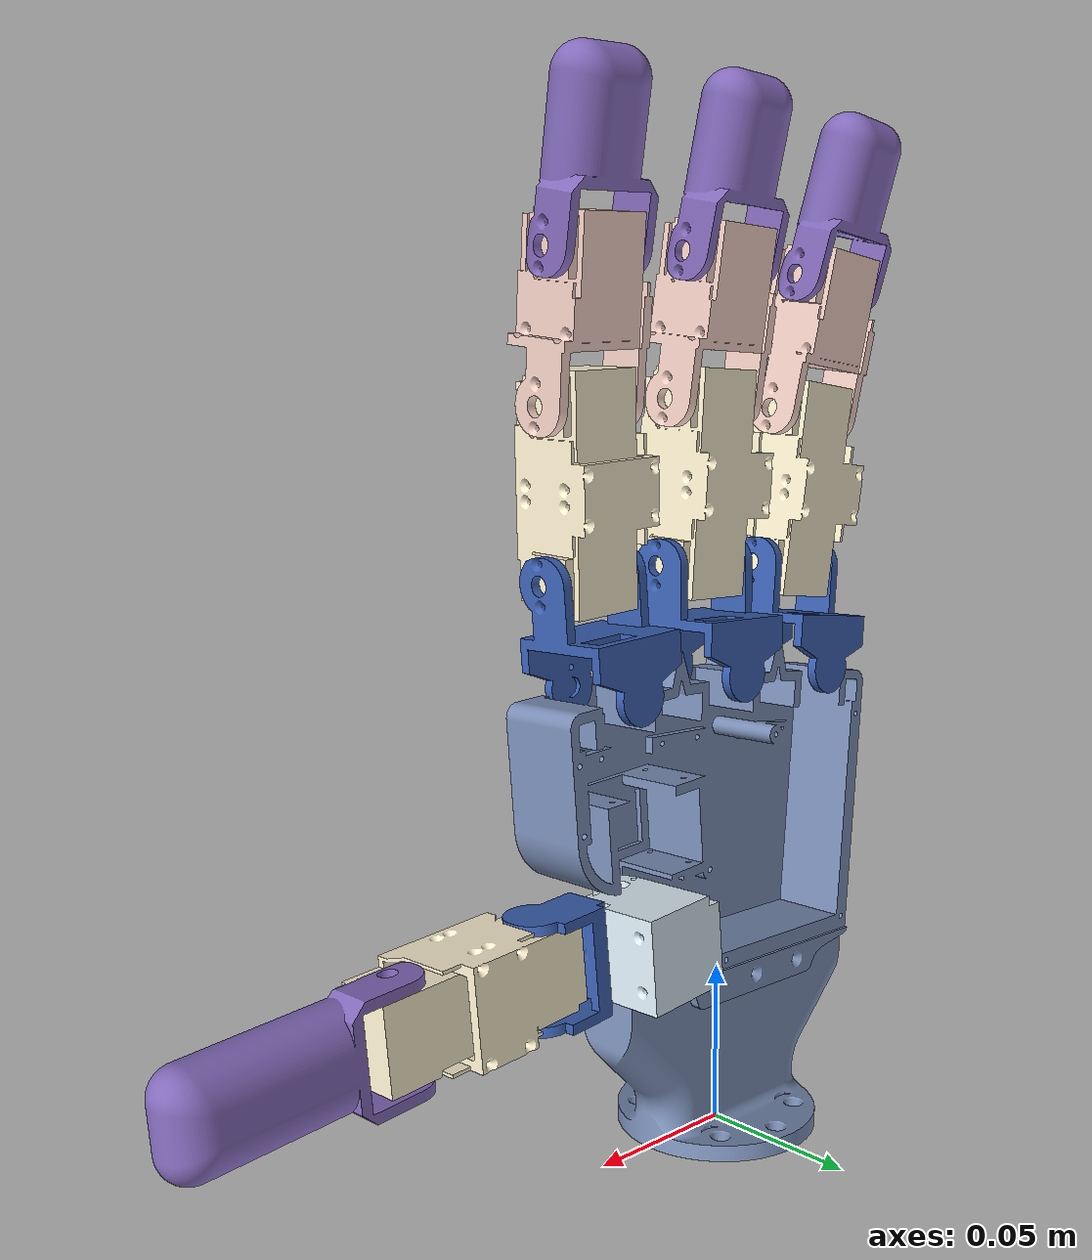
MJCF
<mujoco model="tilburg_hand">
<option timestep="0.01111" iterations="50" integrator="Euler" gravity="0 0 -9.81" />
  <default>
    <geom contype="0" conaffinity="0"/>
  </default>
  <compiler angle="radian"/>

  <asset>
    <mesh name="handbase_and_motors_collision" file="lars_righthand_base.stl" scale="0.001 0.001 0.001"/>
    <mesh name="wrist_collision" file="lars_wrist_straight.stl" scale="0.001 0.001 0.001"/>
    <mesh name="thumb_mcp_collision" file="thumb_mcp_collision.stl"/>
    <mesh name="test_thumb_roll_mcp_collision" file="test_thumb_roll_mcp_collision.stl"/>
    <mesh name="proximal_phalange_collision" file="proximal_phalange_collision.stl"/>
    <mesh name="thumb_distal_collision" file="thumb_distal_collision.stl"/>
    <mesh name="mcp_3_collision" file="mcp_3_collision.stl"/>
    <mesh name="proximal_phalange_2_collision" file="proximal_phalange_2_collision.stl"/>
    <mesh name="middle_phalange_collision" file="middle_phalange_collision.stl"/>
    <mesh name="distal_finalshape_collision" file="distal_finalshape_collision.stl"/>
    <mesh name="mcp_3_2_collision" file="mcp_3_2_collision.stl"/>
    <mesh name="proximal_phalange_3_collision" file="proximal_phalange_3_collision.stl"/>
    <mesh name="middle_phalange_2_collision" file="middle_phalange_2_collision.stl"/>
    <mesh name="distal_finalshape_2_collision" file="distal_finalshape_2_collision.stl"/>
    <mesh name="mcp_3_3_collision" file="mcp_3_3_collision.stl"/>
    <mesh name="proximal_phalange_4_collision" file="proximal_phalange_4_collision.stl"/>
    <mesh name="middle_phalange_3_collision" file="middle_phalange_3_collision.stl"/>
    <mesh name="distal_finalshape_3_collision" file="distal_finalshape_3_collision.stl"/>
  </asset>

<worldbody>
<body name="wrist_straight" pos="0 0 0">
<geom name="wrist" friction="1 0.005 0.001" margin="0.001" solimp="0.95 0.95 0.01" solref="0.008 1" type="mesh" rgba="0.480254 0.55963 0.718543 1" mesh="wrist_collision" pos="-0 0 0"/>
<body name="hand_base" pos="-0.00044 0.055 0.0242" quat="0.70710678 0.70710678 0 0">
   <geom name="handbase_and_motors" friction="1 0.005 0.001" margin="0.001" solimp="0.95 0.95 0.01" solref="0.008 1" type="mesh" rgba="0.480254 0.55963 0.718543 1" mesh="handbase_and_motors_collision" pos="-0.264 0.021 0.042"/>
    <body name="thumb_mcp" pos="0.0462379 0.0619979 0.0529852" quat="0.0426663 -0.0206258 -0.706944 0.70568">
      <inertial pos="-0.00336008 0.0104245 0.0140112" quat="0.705399 0.708685 -0.00389937 -0.0127609" mass="0.0259261" diaginertia="4.44074e-06 4.37503e-06 2.95984e-06"/>
      <joint damping="0.1" stiffness="0.5" armature="0.01" frictionloss="0.01" ref="0" springref="0" margin="0.01" name="thumb_cmc" pos="0 0 0" axis="0 0 1" range="0 1.5708" actuatorfrcrange="-0.35 0.35"/>
      <geom name="thumb_thumb_mcp" friction="1 0.005 0.001" margin="0.001" solimp="0.95 0.95 0.01" solref="0.008 1" type="mesh" rgba="0.871558 0.93709 0.976409 1" mesh="thumb_mcp_collision"/>
      <body name="test_thumb_roll_mcp" pos="-0.01699 0 0.014" quat="0.707087 -0.0052599 -0.707087 0.0052599">
        <inertial pos="-0.000503967 0.00367437 0.00891183" quat="0.441307 0.548539 0.474465 0.528428" mass="0.0051287" diaginertia="1.09205e-06 9.52622e-07 4.71781e-07"/>
        <joint damping="0.1" stiffness="0.5" armature="0.01" frictionloss="0.01" ref="0" springref="0" margin="0.01" name="thumb_mcp_rot" pos="0 0 0" axis="0 0 1" range="-1.74533 0" actuatorfrcrange="-0.35 0.35"/>
        <geom name="thumb_test_thumb_roll_mcp" friction="1 0.005 0.001" margin="0.001" solimp="0.95 0.95 0.01" solref="0.008 1" type="mesh" rgba="0.231373 0.380392 0.705882 1" mesh="test_thumb_roll_mcp_collision"/>
        <body name="proximal_phalange" pos="0.0131 -1.07477e-06 0.0185" quat="0.502265 -0.497725 0.502265 -0.497725">
          <inertial pos="0.000290464 -0.0248 -0.0139996" quat="0.70708 0.70708 0.0061953 -0.0061953" mass="0.0442258" diaginertia="1.83091e-05 1.7756e-05 4.94746e-06"/>
          <joint damping="0.1" stiffness="0.5" armature="0.01" frictionloss="0.01" ref="0" springref="0" margin="0.01" name="thumb_mcp" pos="0 0 0" axis="0 0 1" range="0 1.5708" actuatorfrcrange="-0.35 0.35"/>
          <geom name="thumb_proximal_phalange" friction="1 0.005 0.001" margin="0.001" solimp="0.95 0.95 0.01" solref="0.008 1" type="mesh" rgba="0.995698 0.95113 0.825267 1" mesh="proximal_phalange_collision"/>
          <body name="thumb_distal" pos="0 -0.0496 0" quat="0.707104 0 0 -0.70711">
            <inertial pos="0.0363127 4.71179e-05 -0.0132934" quat="0.490269 0.488734 0.507649 0.512902" mass="0.01279" diaginertia="5.84542e-06 5.17804e-06 1.76804e-06"/>
            <joint damping="0.1" stiffness="0.5" armature="0.01" frictionloss="0.01" ref="0" springref="0" margin="0.01" name="thumb_ip" pos="0 0 0" axis="0 0 1" range="0 1.6581" actuatorfrcrange="-0.35 0.35"/>
            <geom name="thumb_thumb_distal" friction="1 0.005 0.001" margin="0.001" solimp="0.95 0.95 0.01" solref="0.008 1" type="mesh" rgba="0.513726 0.415686 0.733333 1" mesh="thumb_distal_collision"/>
          </body>
        </body>
      </body>
    </body>
    <body name="mcp_3" pos="0.0540379 0.120346 0.0649955" quat="0.999 0.000219053 0.000521299 -0.0446977">
      <inertial pos="-0.00048757 0.0155243 -0.0117405" quat="0.719022 -0.283303 0.16479 0.612855" mass="0.00917755" diaginertia="2.25958e-06 2.05723e-06 1.86647e-06"/>
      <joint damping="0.1" stiffness="0.5" armature="0.01" frictionloss="0.01" ref="0" springref="0" margin="0.01" name="index_mcp_abadd" pos="0 0 0" axis="0 0 1" range="-0.436332 0.436332" actuatorfrcrange="-0.35 0.35"/>
      <geom name="index_mcp_3" friction="1 0.005 0.001" margin="0.001" solimp="0.95 0.95 0.01" solref="0.008 1" type="mesh" rgba="0.231373 0.380392 0.705882 1" mesh="mcp_3_collision"/>
      <body name="proximal_phalange_2" pos="0.0131 0.0325 -0.00659893" quat="0.0256174 0.706643 0.0256174 0.706643">
        <inertial pos="0.000290464 -0.0248 -0.0139996" quat="0.70708 0.70708 0.0061953 -0.0061953" mass="0.0442258" diaginertia="1.83091e-05 1.7756e-05 4.94746e-06"/>
        <joint damping="0.1" stiffness="0.5" armature="0.01" frictionloss="0.01" ref="0" springref="0" margin="0.01" name="index_mcp" pos="0 0 0" axis="0 0 1" range="-0.0873 1.6581" actuatorfrcrange="-0.35 0.35"/>
        <geom name="index_proximal_phalange_2" friction="1 0.005 0.001" margin="0.001" solimp="0.95 0.95 0.01" solref="0.008 1" type="mesh" rgba="0.995698 0.95113 0.825267 1" mesh="proximal_phalange_2_collision"/>
        <body name="middle_phalange" pos="0 -0.0496 0" quat="0.67569 0 0 -0.737186">
          <inertial pos="0.0299115 0.00075866 -0.0138424" quat="0.488832 0.485623 0.505181 0.519621" mass="0.0256181" diaginertia="6.4616e-06 5.47097e-06 3.01437e-06"/>
          <joint damping="0.1" stiffness="0.5" armature="0.01" frictionloss="0.01" ref="0" springref="0" margin="0.01" name="index_pip" pos="0 0 0" axis="0 0 1" range="-0.0873 1.6581" actuatorfrcrange="-0.35 0.35"/>
          <geom name="index_middle_phalange" friction="1 0.005 0.001" margin="0.001" solimp="0.95 0.95 0.01" solref="0.008 1" type="mesh" rgba="0.959064 0.819626 0.777411 1" mesh="middle_phalange_collision"/>
          <body name="distal_finalshape" pos="0.0423 0 -1e-05" quat="0.99905 0.000871836 3.80276e-05 -0.0435764">
            <inertial pos="0.028182 -0.000109832 -0.0133084" quat="0.484783 0.47974 0.511816 0.52238" mass="0.00905" diaginertia="2.94805e-06 2.40857e-06 1.27278e-06"/>
            <joint damping="0.1" stiffness="0.5" armature="0.01" frictionloss="0.01" ref="0" springref="0" margin="0.01" name="index_dip" pos="0 0 0" axis="0 0 1" range="-0.0873 1.6581" actuatorfrcrange="-0.35 0.35"/>
            <geom name="index_distal_finalshape" friction="1 0.005 0.001" margin="0.001" solimp="0.95 0.95 0.01" solref="0.008 1" type="mesh" rgba="0.513726 0.415686 0.733333 1" mesh="distal_finalshape_collision"/>
          </body>
        </body>scale="0.001 0.001 0.001"
      </body>
    </body>
    <body name="mcp_3_2" pos="0.009956 0.122372 0.0650415" quat="0.999999 0.00024155 0.000511263 -0.00114438">
      <inertial pos="-0.00048757 0.0155243 -0.0117405" quat="0.719022 -0.283303 0.16479 0.612855" mass="0.00917755" diaginertia="2.25958e-06 2.05723e-06 1.86647e-06"/>
      <joint damping="0.1" stiffness="0.5" armature="0.01" frictionloss="0.01" ref="0" springref="0" margin="0.01" name="middle_mcp_abadd" pos="0 0 0" axis="0 0 1" range="-0.436332 0.436332" actuatorfrcrange="-0.35 0.35"/>
      <geom name="middle_mcp_3_2" friction="1 0.005 0.001" margin="0.001" solimp="0.95 0.95 0.01" solref="0.008 1" type="mesh" rgba="0.231373 0.380392 0.705882 1" mesh="mcp_3_2_collision"/>
      <body name="proximal_phalange_3" pos="0.0131 0.0325 -0.00659893" quat="0.0247065 0.706675 0.0247065 0.706675">
        <inertial pos="0.000290464 -0.0248 -0.0139996" quat="0.70708 0.70708 0.0061953 -0.0061953" mass="0.0442258" diaginertia="1.83091e-05 1.7756e-05 4.94746e-06"/>
        <joint damping="0.1" stiffness="0.5" armature="0.01" frictionloss="0.01" ref="0" springref="0" margin="0.01" name="middle_mcp" pos="0 0 0" axis="0 0 1" range="-0.0873 1.6581" actuatorfrcrange="-0.35 0.35"/>
        <geom name="middle_proximal_phalange_3" friction="1 0.005 0.001" margin="0.001" solimp="0.95 0.95 0.01" solref="0.008 1" type="mesh" rgba="0.995698 0.95113 0.825267 1" mesh="proximal_phalange_3_collision"/>
        <body name="middle_phalange_2" pos="0 -0.0496 0" quat="0.675687 0 0 -0.737189">
          <inertial pos="0.0299115 0.00075866 -0.0138424" quat="0.488832 0.485623 0.505181 0.519621" mass="0.0256181" diaginertia="6.4616e-06 5.47097e-06 3.01437e-06"/>
          <joint damping="0.1" stiffness="0.5" armature="0.01" frictionloss="0.01" ref="0" springref="0" margin="0.01" name="middle_pip" pos="0 0 0" axis="0 0 1" range="-0.0873 1.6581" actuatorfrcrange="-0.35 0.35"/>
          <geom name="middle_middle_phalange_2" friction="1 0.005 0.001" margin="0.001" solimp="0.95 0.95 0.01" solref="0.008 1" type="mesh" rgba="0.959064 0.819626 0.777411 1" mesh="middle_phalange_2_collision"/>
          <body name="distal_finalshape_2" pos="0.0423 0 -1e-05" quat="0.99905 0.000871836 3.80276e-05 -0.0435764">
            <inertial pos="0.028182 -0.000109832 -0.0133084" quat="0.484783 0.47974 0.511816 0.52238" mass="0.00905" diaginertia="2.94805e-06 2.40857e-06 1.27278e-06"/>
            <joint damping="0.1" stiffness="0.5" armature="0.01" frictionloss="0.01" ref="0" springref="0" margin="0.01" name="middle_dip" pos="0 0 0" axis="0 0 1" range="-0.0873 1.6581" actuatorfrcrange="-0.35 0.35"/>
            <geom name="middle_distal_finalshape_2" friction="1 0.005 0.001" margin="0.001" solimp="0.95 0.95 0.01" solref="0.008 1" type="mesh" rgba="0.513726 0.415686 0.733333 1" mesh="distal_finalshape_2_collision"/>
          </body>
        </body>
      </body>
    </body>
    <body name="mcp_3_3" pos="-0.0346372 0.120001 0.0680959" quat="0.9991 0.000263588 0.000500258 0.0424111">
      <inertial pos="-0.00048757 0.0155243 -0.0117405" quat="0.719022 -0.283303 0.16479 0.612855" mass="0.00917755" diaginertia="2.25958e-06 2.05723e-06 1.86647e-06"/>
      <joint damping="0.1" stiffness="0.5" armature="0.01" frictionloss="0.01" ref="0" springref="0" margin="0.01" name="ring_mcp_abadd" pos="0 0 0" axis="0 0 1" range="-0.436332 0.436332" actuatorfrcrange="-0.35 0.35"/>
      <geom name="ring_mcp_3_3" friction="1 0.005 0.001" margin="0.001" solimp="0.95 0.95 0.01" solref="0.008 1" type="mesh" rgba="0.231373 0.380392 0.705882 1" mesh="mcp_3_3_collision"/>
      <body name="proximal_phalange_4" pos="0.0131 0.0325 -0.00659893" quat="0.0238426 0.706705 0.0238426 0.706705">
        <inertial pos="0.000290464 -0.0248 -0.0139996" quat="0.70708 0.70708 0.0061953 -0.0061953" mass="0.0442258" diaginertia="1.83091e-05 1.7756e-05 4.94746e-06"/>
        <joint damping="0.1" stiffness="0.5" armature="0.01" frictionloss="0.01" ref="0" springref="0" margin="0.01" name="ring_mcp" pos="0 0 0" axis="0 0 1" range="-0.0873 1.6581" actuatorfrcrange="-0.35 0.35"/>
        <geom name="ring_proximal_phalange_4" friction="1 0.005 0.001" margin="0.001" solimp="0.95 0.95 0.01" solref="0.008 1" type="mesh" rgba="0.995698 0.95113 0.825267 1" mesh="proximal_phalange_4_collision"/>
        <body name="middle_phalange_3" pos="0 -0.0496 0" quat="0.675684 0 0 -0.737191">
          <inertial pos="0.0299115 0.00075866 -0.0138424" quat="0.488832 0.485623 0.505181 0.519621" mass="0.0256181" diaginertia="6.4616e-06 5.47097e-06 3.01437e-06"/>
          <joint damping="0.1" stiffness="0.5" armature="0.01" frictionloss="0.01" ref="0" springref="0" margin="0.01" name="ring_pip" pos="0 0 0" axis="0 0 1" range="-0.0873 1.6581" actuatorfrcrange="-0.35 0.35"/>
          <geom name="ring_middle_phalange_3" friction="1 0.005 0.001" margin="0.001" solimp="0.95 0.95 0.01" solref="0.008 1" type="mesh" rgba="0.959064 0.819626 0.777411 1" mesh="middle_phalange_3_collision"/>
          <body name="distal_finalshape_3" pos="0.0423 0 -1e-05" quat="0.99905 0.000871836 3.80272e-05 -0.0435759">
            <inertial pos="0.028182 -0.000109832 -0.0133084" quat="0.484783 0.47974 0.511816 0.52238" mass="0.00905" diaginertia="2.94805e-06 2.40857e-06 1.27278e-06"/>
            <joint damping="0.1" stiffness="0.5" armature="0.01" frictionloss="0.01" ref="0" springref="0" margin="0.01" name="ring_dip" pos="0 0 0" axis="0 0 1" range="-0.0873 1.6581" actuatorfrcrange="-0.35 0.35"/>
            <geom name="ring_distal_finalshape_3" friction="1 0.005 0.001" margin="0.001" solimp="0.95 0.95 0.01" solref="0.008 1" type="mesh" rgba="0.513726 0.415686 0.733333 1" mesh="distal_finalshape_3_collision"/>
          </body>scale="0.001 0.001 0.001"
        </body>
      </body>
    </body>
</body>
</body>
</worldbody>
<actuator>
<position ctrllimited="true" forcelimited="true" forcerange="-3 3" kp="100" gear="1" ctrlrange="0 1.5708" joint="thumb_cmc" name="thumb_cmc"></position>
<position ctrllimited="true" forcelimited="true" forcerange="-3 3" kp="100" gear="1" ctrlrange="-1.74533 0" joint="thumb_mcp_rot" name="thumb_mcp_rot"></position>
<position ctrllimited="true" forcelimited="true" forcerange="-3 3" kp="100" gear="1" ctrlrange="0 1.5708" joint="thumb_mcp" name="thumb_mcp"></position>
<position ctrllimited="true" forcelimited="true" forcerange="-3 3" kp="100" gear="1" ctrlrange="0 1.6581" joint="thumb_ip" name="thumb_ip"></position>
<position ctrllimited="true" forcelimited="true" forcerange="-3 3" kp="100" gear="1" ctrlrange="-0.436332 0.436332" joint="index_mcp_abadd" name="index_mcp_abadd"></position>
<position ctrllimited="true" forcelimited="true" forcerange="-3 3" kp="100" gear="1" ctrlrange="-0.0873 1.6581" joint="index_mcp" name="index_mcp"></position>
<position ctrllimited="true" forcelimited="true" forcerange="-3 3" kp="100" gear="1" ctrlrange="-0.0873 1.6581" joint="index_pip" name="index_pip"></position>
<position ctrllimited="true" forcelimited="true" forcerange="-3 3" kp="100" gear="1" ctrlrange="-0.0873 1.6581" joint="index_dip" name="index_dip"></position>
<position ctrllimited="true" forcelimited="true" forcerange="-3 3" kp="100" gear="1" ctrlrange="-0.436332 0.436332" joint="middle_mcp_abadd" name="middle_mcp_abadd"></position>
<position ctrllimited="true" forcelimited="true" forcerange="-3 3" kp="100" gear="1" ctrlrange="-0.0873 1.6581" joint="middle_mcp" name="middle_mcp"></position>
<position ctrllimited="true" forcelimited="true" forcerange="-3 3" kp="100" gear="1" ctrlrange="-0.0873 1.6581" joint="middle_pip" name="middle_pip"></position>
<position ctrllimited="true" forcelimited="true" forcerange="-3 3" kp="100" gear="1" ctrlrange="-0.0873 1.6581" joint="middle_dip" name="middle_dip"></position>
<position ctrllimited="true" forcelimited="true" forcerange="-3 3" kp="100" gear="1" ctrlrange="-0.436332 0.436332" joint="ring_mcp_abadd" name="ring_mcp_abadd"></position>
<position ctrllimited="true" forcelimited="true" forcerange="-3 3" kp="100" gear="1" ctrlrange="-0.0873 1.6581" joint="ring_mcp" name="ring_mcp"></position>
<position ctrllimited="true" forcelimited="true" forcerange="-3 3" kp="100" gear="1" ctrlrange="-0.0873 1.6581" joint="ring_pip" name="ring_pip"></position>
<position ctrllimited="true" forcelimited="true" forcerange="-3 3" kp="100" gear="1" ctrlrange="-0.0873 1.6581" joint="ring_dip" name="ring_dip"></position>
</actuator>
<contact><pair geom1="thumb_proximal_phalange" geom2="index_mcp_3" condim="3" friction="1 0.005 0.001" margin="0.0005" solimp="0.95 0.95 0.01" solref="0.008 1" />
        <pair geom1="thumb_proximal_phalange" geom2="index_proximal_phalange_2" condim="3" friction="1 0.005 0.001" margin="0.0005" solimp="0.95 0.95 0.01" solref="0.008 1" />
        <pair geom1="thumb_proximal_phalange" geom2="index_middle_phalange" condim="3" friction="1 0.005 0.001" margin="0.0005" solimp="0.95 0.95 0.01" solref="0.008 1" />
        <pair geom1="thumb_proximal_phalange" geom2="index_distal_finalshape" condim="3" friction="1 0.005 0.001" margin="0.0005" solimp="0.95 0.95 0.01" solref="0.008 1" />
        <pair geom1="thumb_proximal_phalange" geom2="middle_mcp_3_2" condim="3" friction="1 0.005 0.001" margin="0.0005" solimp="0.95 0.95 0.01" solref="0.008 1" />
        <pair geom1="thumb_proximal_phalange" geom2="middle_proximal_phalange_3" condim="3" friction="1 0.005 0.001" margin="0.0005" solimp="0.95 0.95 0.01" solref="0.008 1" />
        <pair geom1="thumb_proximal_phalange" geom2="middle_middle_phalange_2" condim="3" friction="1 0.005 0.001" margin="0.0005" solimp="0.95 0.95 0.01" solref="0.008 1" />
        <pair geom1="thumb_proximal_phalange" geom2="middle_distal_finalshape_2" condim="3" friction="1 0.005 0.001" margin="0.0005" solimp="0.95 0.95 0.01" solref="0.008 1" />
        <pair geom1="thumb_proximal_phalange" geom2="ring_mcp_3_3" condim="3" friction="1 0.005 0.001" margin="0.0005" solimp="0.95 0.95 0.01" solref="0.008 1" />
        <pair geom1="thumb_proximal_phalange" geom2="ring_proximal_phalange_4" condim="3" friction="1 0.005 0.001" margin="0.0005" solimp="0.95 0.95 0.01" solref="0.008 1" />
        <pair geom1="thumb_proximal_phalange" geom2="ring_middle_phalange_3" condim="3" friction="1 0.005 0.001" margin="0.0005" solimp="0.95 0.95 0.01" solref="0.008 1" />
        <pair geom1="thumb_proximal_phalange" geom2="ring_distal_finalshape_3" condim="3" friction="1 0.005 0.001" margin="0.0005" solimp="0.95 0.95 0.01" solref="0.008 1" />
        <pair geom1="handbase_and_motors" geom2="thumb_thumb_distal" condim="3" friction="1 0.005 0.001" margin="0.0005" solimp="0.95 0.95 0.01" solref="0.008 1" />
        <pair geom1="thumb_thumb_distal" geom2="index_mcp_3" condim="3" friction="1 0.005 0.001" margin="0.0005" solimp="0.95 0.95 0.01" solref="0.008 1" />
        <pair geom1="thumb_thumb_distal" geom2="index_proximal_phalange_2" condim="3" friction="1 0.005 0.001" margin="0.0005" solimp="0.95 0.95 0.01" solref="0.008 1" />
        <pair geom1="thumb_thumb_distal" geom2="index_middle_phalange" condim="3" friction="1 0.005 0.001" margin="0.0005" solimp="0.95 0.95 0.01" solref="0.008 1" />
        <pair geom1="thumb_thumb_distal" geom2="index_distal_finalshape" condim="3" friction="1 0.005 0.001" margin="0.0005" solimp="0.95 0.95 0.01" solref="0.008 1" />
        <pair geom1="thumb_thumb_distal" geom2="middle_mcp_3_2" condim="3" friction="1 0.005 0.001" margin="0.0005" solimp="0.95 0.95 0.01" solref="0.008 1" />
        <pair geom1="thumb_thumb_distal" geom2="middle_proximal_phalange_3" condim="3" friction="1 0.005 0.001" margin="0.0005" solimp="0.95 0.95 0.01" solref="0.008 1" />
        <pair geom1="thumb_thumb_distal" geom2="middle_middle_phalange_2" condim="3" friction="1 0.005 0.001" margin="0.0005" solimp="0.95 0.95 0.01" solref="0.008 1" />
        <pair geom1="thumb_thumb_distal" geom2="middle_distal_finalshape_2" condim="3" friction="1 0.005 0.001" margin="0.0005" solimp="0.95 0.95 0.01" solref="0.008 1" />
        <pair geom1="thumb_thumb_distal" geom2="ring_mcp_3_3" condim="3" friction="1 0.005 0.001" margin="0.0005" solimp="0.95 0.95 0.01" solref="0.008 1" />
        <pair geom1="thumb_thumb_distal" geom2="ring_proximal_phalange_4" condim="3" friction="1 0.005 0.001" margin="0.0005" solimp="0.95 0.95 0.01" solref="0.008 1" />
        <pair geom1="thumb_thumb_distal" geom2="ring_middle_phalange_3" condim="3" friction="1 0.005 0.001" margin="0.0005" solimp="0.95 0.95 0.01" solref="0.008 1" />
        <pair geom1="thumb_thumb_distal" geom2="ring_distal_finalshape_3" condim="3" friction="1 0.005 0.001" margin="0.0005" solimp="0.95 0.95 0.01" solref="0.008 1" />
        <pair geom1="index_mcp_3" geom2="index_distal_finalshape" condim="3" friction="1 0.005 0.001" margin="0.0005" solimp="0.95 0.95 0.01" solref="0.008 1" />
        <pair geom1="index_proximal_phalange_2" geom2="index_distal_finalshape" condim="3" friction="1 0.005 0.001" margin="0.0005" solimp="0.95 0.95 0.01" solref="0.008 1" />
        <pair geom1="index_mcp_3" geom2="middle_mcp_3_2" condim="3" friction="1 0.005 0.001" margin="0.0005" solimp="0.95 0.95 0.01" solref="0.008 1" />
        <pair geom1="index_mcp_3" geom2="middle_proximal_phalange_3" condim="3" friction="1 0.005 0.001" margin="0.0005" solimp="0.95 0.95 0.01" solref="0.008 1" />
        <pair geom1="index_mcp_3" geom2="middle_middle_phalange_2" condim="3" friction="1 0.005 0.001" margin="0.0005" solimp="0.95 0.95 0.01" solref="0.008 1" />
        <pair geom1="index_mcp_3" geom2="middle_distal_finalshape_2" condim="3" friction="1 0.005 0.001" margin="0.0005" solimp="0.95 0.95 0.01" solref="0.008 1" />
        <pair geom1="index_mcp_3" geom2="ring_mcp_3_3" condim="3" friction="1 0.005 0.001" margin="0.0005" solimp="0.95 0.95 0.01" solref="0.008 1" />
        <pair geom1="index_mcp_3" geom2="ring_proximal_phalange_4" condim="3" friction="1 0.005 0.001" margin="0.0005" solimp="0.95 0.95 0.01" solref="0.008 1" />
        <pair geom1="index_mcp_3" geom2="ring_middle_phalange_3" condim="3" friction="1 0.005 0.001" margin="0.0005" solimp="0.95 0.95 0.01" solref="0.008 1" />
        <pair geom1="index_mcp_3" geom2="ring_distal_finalshape_3" condim="3" friction="1 0.005 0.001" margin="0.0005" solimp="0.95 0.95 0.01" solref="0.008 1" />
        <pair geom1="index_proximal_phalange_2" geom2="middle_mcp_3_2" condim="3" friction="1 0.005 0.001" margin="0.0005" solimp="0.95 0.95 0.01" solref="0.008 1" />
        <pair geom1="index_proximal_phalange_2" geom2="middle_proximal_phalange_3" condim="3" friction="1 0.005 0.001" margin="0.0005" solimp="0.95 0.95 0.01" solref="0.008 1" />
        <pair geom1="index_proximal_phalange_2" geom2="middle_middle_phalange_2" condim="3" friction="1 0.005 0.001" margin="0.0005" solimp="0.95 0.95 0.01" solref="0.008 1" />
        <pair geom1="index_proximal_phalange_2" geom2="middle_distal_finalshape_2" condim="3" friction="1 0.005 0.001" margin="0.0005" solimp="0.95 0.95 0.01" solref="0.008 1" />
        <pair geom1="index_proximal_phalange_2" geom2="ring_mcp_3_3" condim="3" friction="1 0.005 0.001" margin="0.0005" solimp="0.95 0.95 0.01" solref="0.008 1" />
        <pair geom1="index_proximal_phalange_2" geom2="ring_proximal_phalange_4" condim="3" friction="1 0.005 0.001" margin="0.0005" solimp="0.95 0.95 0.01" solref="0.008 1" />
        <pair geom1="index_proximal_phalange_2" geom2="ring_middle_phalange_3" condim="3" friction="1 0.005 0.001" margin="0.0005" solimp="0.95 0.95 0.01" solref="0.008 1" />
        <pair geom1="index_proximal_phalange_2" geom2="ring_distal_finalshape_3" condim="3" friction="1 0.005 0.001" margin="0.0005" solimp="0.95 0.95 0.01" solref="0.008 1" />
        <pair geom1="index_middle_phalange" geom2="middle_mcp_3_2" condim="3" friction="1 0.005 0.001" margin="0.0005" solimp="0.95 0.95 0.01" solref="0.008 1" />
        <pair geom1="index_middle_phalange" geom2="middle_proximal_phalange_3" condim="3" friction="1 0.005 0.001" margin="0.0005" solimp="0.95 0.95 0.01" solref="0.008 1" />
        <pair geom1="index_middle_phalange" geom2="middle_middle_phalange_2" condim="3" friction="1 0.005 0.001" margin="0.0005" solimp="0.95 0.95 0.01" solref="0.008 1" />
        <pair geom1="index_middle_phalange" geom2="middle_distal_finalshape_2" condim="3" friction="1 0.005 0.001" margin="0.0005" solimp="0.95 0.95 0.01" solref="0.008 1" />
        <pair geom1="index_middle_phalange" geom2="ring_mcp_3_3" condim="3" friction="1 0.005 0.001" margin="0.0005" solimp="0.95 0.95 0.01" solref="0.008 1" />
        <pair geom1="index_middle_phalange" geom2="ring_proximal_phalange_4" condim="3" friction="1 0.005 0.001" margin="0.0005" solimp="0.95 0.95 0.01" solref="0.008 1" />
        <pair geom1="index_middle_phalange" geom2="ring_middle_phalange_3" condim="3" friction="1 0.005 0.001" margin="0.0005" solimp="0.95 0.95 0.01" solref="0.008 1" />
        <pair geom1="index_middle_phalange" geom2="ring_distal_finalshape_3" condim="3" friction="1 0.005 0.001" margin="0.0005" solimp="0.95 0.95 0.01" solref="0.008 1" />
        <pair geom1="handbase_and_motors" geom2="index_distal_finalshape" condim="3" friction="1 0.005 0.001" margin="0.0005" solimp="0.95 0.95 0.01" solref="0.008 1" />
        <pair geom1="index_distal_finalshape" geom2="middle_mcp_3_2" condim="3" friction="1 0.005 0.001" margin="0.0005" solimp="0.95 0.95 0.01" solref="0.008 1" />
        <pair geom1="index_distal_finalshape" geom2="middle_proximal_phalange_3" condim="3" friction="1 0.005 0.001" margin="0.0005" solimp="0.95 0.95 0.01" solref="0.008 1" />
        <pair geom1="index_distal_finalshape" geom2="middle_middle_phalange_2" condim="3" friction="1 0.005 0.001" margin="0.0005" solimp="0.95 0.95 0.01" solref="0.008 1" />
        <pair geom1="index_distal_finalshape" geom2="middle_distal_finalshape_2" condim="3" friction="1 0.005 0.001" margin="0.0005" solimp="0.95 0.95 0.01" solref="0.008 1" />
        <pair geom1="index_distal_finalshape" geom2="ring_mcp_3_3" condim="3" friction="1 0.005 0.001" margin="0.0005" solimp="0.95 0.95 0.01" solref="0.008 1" />
        <pair geom1="index_distal_finalshape" geom2="ring_proximal_phalange_4" condim="3" friction="1 0.005 0.001" margin="0.0005" solimp="0.95 0.95 0.01" solref="0.008 1" />
        <pair geom1="index_distal_finalshape" geom2="ring_middle_phalange_3" condim="3" friction="1 0.005 0.001" margin="0.0005" solimp="0.95 0.95 0.01" solref="0.008 1" />
        <pair geom1="index_distal_finalshape" geom2="ring_distal_finalshape_3" condim="3" friction="1 0.005 0.001" margin="0.0005" solimp="0.95 0.95 0.01" solref="0.008 1" />
        <pair geom1="middle_mcp_3_2" geom2="middle_distal_finalshape_2" condim="3" friction="1 0.005 0.001" margin="0.0005" solimp="0.95 0.95 0.01" solref="0.008 1" />
        <pair geom1="middle_proximal_phalange_3" geom2="middle_distal_finalshape_2" condim="3" friction="1 0.005 0.001" margin="0.0005" solimp="0.95 0.95 0.01" solref="0.008 1" />
        <pair geom1="middle_mcp_3_2" geom2="ring_mcp_3_3" condim="3" friction="1 0.005 0.001" margin="0.0005" solimp="0.95 0.95 0.01" solref="0.008 1" />
        <pair geom1="middle_mcp_3_2" geom2="ring_proximal_phalange_4" condim="3" friction="1 0.005 0.001" margin="0.0005" solimp="0.95 0.95 0.01" solref="0.008 1" />
        <pair geom1="middle_mcp_3_2" geom2="ring_middle_phalange_3" condim="3" friction="1 0.005 0.001" margin="0.0005" solimp="0.95 0.95 0.01" solref="0.008 1" />
        <pair geom1="middle_mcp_3_2" geom2="ring_distal_finalshape_3" condim="3" friction="1 0.005 0.001" margin="0.0005" solimp="0.95 0.95 0.01" solref="0.008 1" />
        <pair geom1="middle_proximal_phalange_3" geom2="ring_mcp_3_3" condim="3" friction="1 0.005 0.001" margin="0.0005" solimp="0.95 0.95 0.01" solref="0.008 1" />
        <pair geom1="middle_proximal_phalange_3" geom2="ring_proximal_phalange_4" condim="3" friction="1 0.005 0.001" margin="0.0005" solimp="0.95 0.95 0.01" solref="0.008 1" />
        <pair geom1="middle_proximal_phalange_3" geom2="ring_middle_phalange_3" condim="3" friction="1 0.005 0.001" margin="0.0005" solimp="0.95 0.95 0.01" solref="0.008 1" />
        <pair geom1="middle_proximal_phalange_3" geom2="ring_distal_finalshape_3" condim="3" friction="1 0.005 0.001" margin="0.0005" solimp="0.95 0.95 0.01" solref="0.008 1" />
        <pair geom1="middle_middle_phalange_2" geom2="ring_mcp_3_3" condim="3" friction="1 0.005 0.001" margin="0.0005" solimp="0.95 0.95 0.01" solref="0.008 1" />
        <pair geom1="middle_middle_phalange_2" geom2="ring_proximal_phalange_4" condim="3" friction="1 0.005 0.001" margin="0.0005" solimp="0.95 0.95 0.01" solref="0.008 1" />
        <pair geom1="middle_middle_phalange_2" geom2="ring_middle_phalange_3" condim="3" friction="1 0.005 0.001" margin="0.0005" solimp="0.95 0.95 0.01" solref="0.008 1" />
        <pair geom1="middle_middle_phalange_2" geom2="ring_distal_finalshape_3" condim="3" friction="1 0.005 0.001" margin="0.0005" solimp="0.95 0.95 0.01" solref="0.008 1" />
        <pair geom1="handbase_and_motors" geom2="middle_distal_finalshape_2" condim="3" friction="1 0.005 0.001" margin="0.0005" solimp="0.95 0.95 0.01" solref="0.008 1" />
        <pair geom1="middle_distal_finalshape_2" geom2="ring_mcp_3_3" condim="3" friction="1 0.005 0.001" margin="0.0005" solimp="0.95 0.95 0.01" solref="0.008 1" />
        <pair geom1="middle_distal_finalshape_2" geom2="ring_proximal_phalange_4" condim="3" friction="1 0.005 0.001" margin="0.0005" solimp="0.95 0.95 0.01" solref="0.008 1" />
        <pair geom1="middle_distal_finalshape_2" geom2="ring_middle_phalange_3" condim="3" friction="1 0.005 0.001" margin="0.0005" solimp="0.95 0.95 0.01" solref="0.008 1" />
        <pair geom1="middle_distal_finalshape_2" geom2="ring_distal_finalshape_3" condim="3" friction="1 0.005 0.001" margin="0.0005" solimp="0.95 0.95 0.01" solref="0.008 1" />
        <pair geom1="ring_mcp_3_3" geom2="ring_distal_finalshape_3" condim="3" friction="1 0.005 0.001" margin="0.0005" solimp="0.95 0.95 0.01" solref="0.008 1" />
        <pair geom1="ring_proximal_phalange_4" geom2="ring_distal_finalshape_3" condim="3" friction="1 0.005 0.001" margin="0.0005" solimp="0.95 0.95 0.01" solref="0.008 1" />
        <pair geom1="handbase_and_motors" geom2="ring_distal_finalshape_3" condim="3" friction="1 0.005 0.001" margin="0.0005" solimp="0.95 0.95 0.01" solref="0.008 1" />
</contact>
</mujoco>
